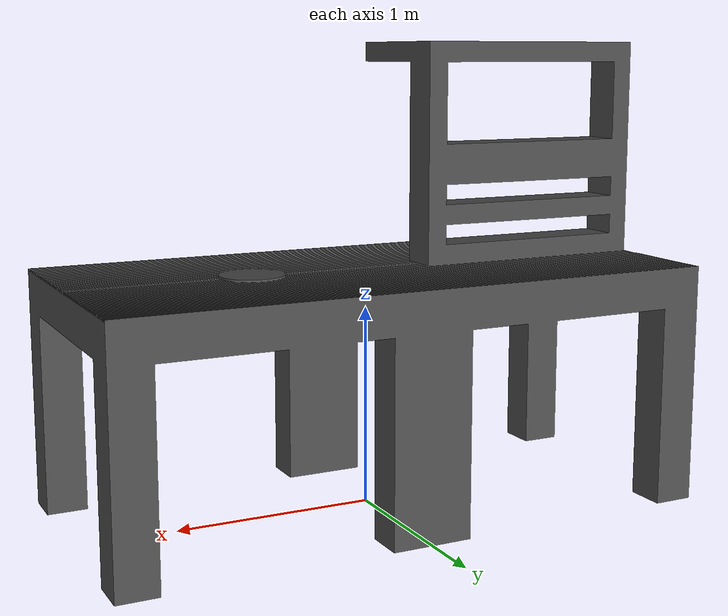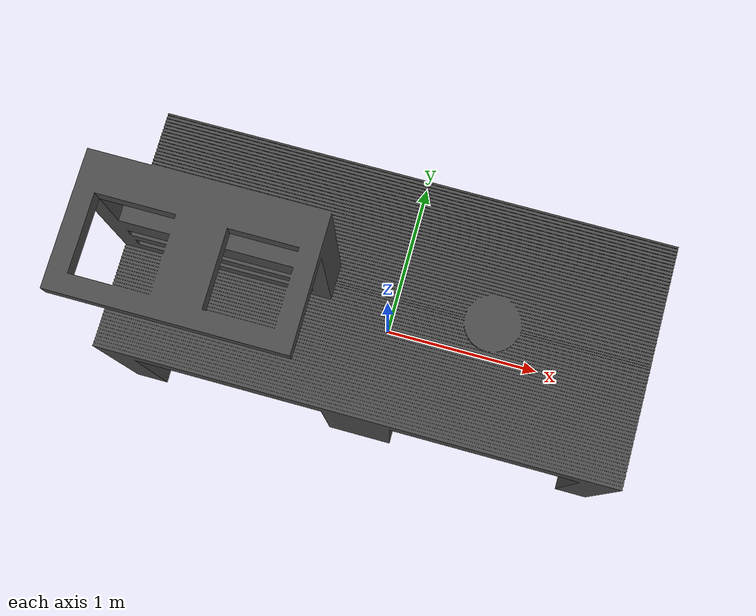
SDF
<?xml version="1.0" ?>
<sdf version="1.8">
  <model name="lab_table">
    <static>true</static>
    <pose>0 0 0 0 0 0</pose>

    <link name="table_link">

      <!-- Visual mesh -->
      <visual name="table_visual">
        <geometry>
          <mesh>
            <uri>model://lab_table/meshes/Table.stl</uri>
            <scale>0.001 0.001 0.001</scale>
          </mesh>
        </geometry>
        <material>
          <ambient>0.2 0.2 0.2 1</ambient>
          <diffuse>0.3 0.3 0.3 1</diffuse>
          <specular>0.05 0.05 0.05 1</specular>
        </material>
      </visual>

      <!-- Simple collision -->
      <collision name="table_collision">
        <pose>0 0 0.4 0 0 0</pose>
        <geometry>
          <box>
            <size>1.2 0.8 0.8</size>
          </box>
        </geometry>
      </collision>

    </link>
  </model>
</sdf>
